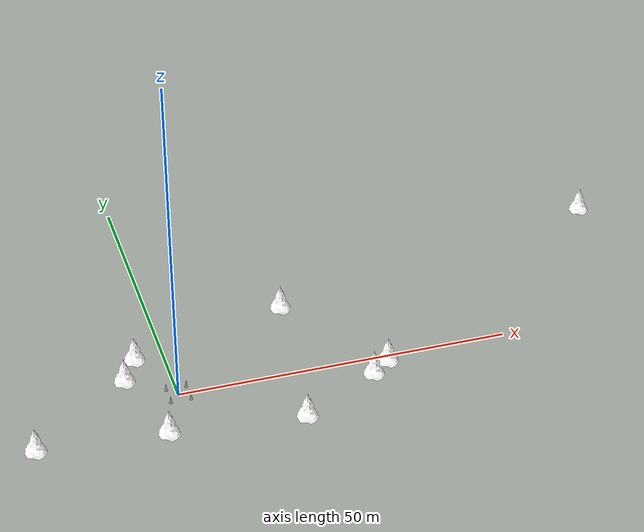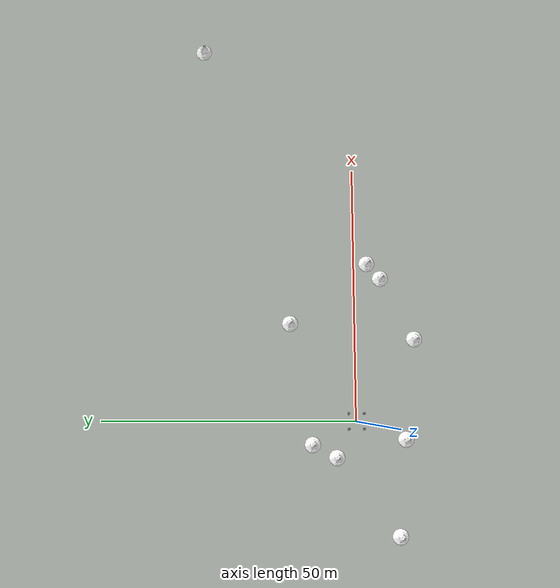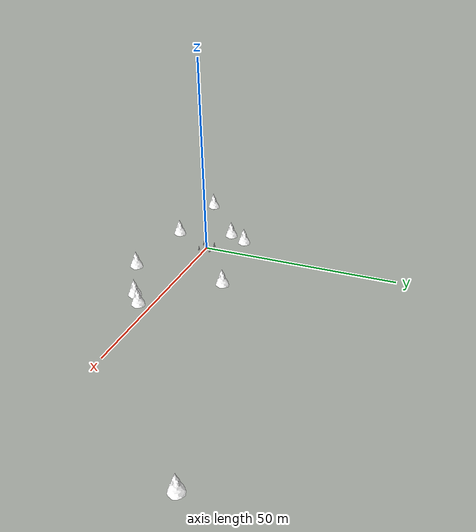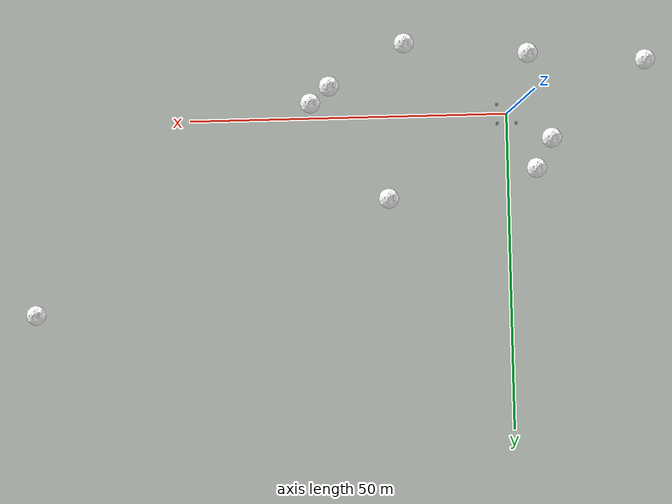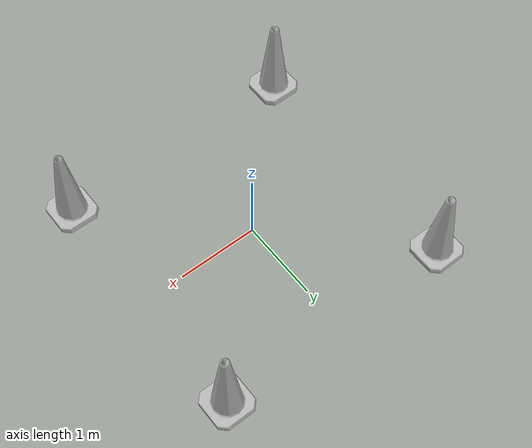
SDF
<sdf version="1.9">
 <world name="outdoor_village">
  <scene><ambient>0.4 0.4 0.4 1</ambient><background>0.7 0.7 0.7 1</background><shadows>1</shadows></scene>
  <physics type="ode">
   <max_step_size>0.004</max_step_size>
   <real_time_factor>1</real_time_factor>
   <real_time_update_rate>250</real_time_update_rate>
  </physics>
  <magnetic_field>6e-06 2.3e-05 -4.2e-05</magnetic_field>
  <gravity>0 0 -9.8066</gravity>
  <light name="sun" type="directional">
   <pose>0 0 10 0 0 0</pose>
   <diffuse>0.8 0.8 0.8 1</diffuse>
   <specular>0.2 0.2 0.2 1</specular>
   <attenuation>
    <range>1000</range>
    <constant>0.9</constant>
    <linear>0.01</linear>
    <quadratic>0.001</quadratic>
   </attenuation>
   <direction>-0.5 0.1 -0.9</direction>
  </light>
  <include>
   <name>construction_cone_1</name>
   <uri>model://construction_cone</uri>
   <pose>1.5 1.5 0   0 0 0</pose>
  </include>
  <include>
   <name>construction_cone_2</name>
   <uri>model://construction_cone</uri>
   <pose>-1.5 1.5 0   0 0 0</pose>
  </include>
  <include>
   <name>construction_cone_3</name>
   <uri>model://construction_cone</uri>
   <pose>1.5 -1.5 0   0 0 0</pose>
  </include>
  <include>
   <name>construction_cone_4</name>
   <uri>model://construction_cone</uri>
   <pose>-1.5 -1.5 0   0 0 0</pose>
  </include>
  <include><name>pine_tree_1</name><uri>model://pine_tree</uri><pose>-4.5 8.7 0   0 0 0</pose></include>
  <include><name>pine_tree_2</name><uri>model://pine_tree</uri><pose>-3.5 -9.5 0   0 0 0</pose></include>
  <include><name>pine_tree_3</name><uri>model://pine_tree</uri><pose>-7 4 0   0 0 0</pose></include>
  <include><name>pine_tree_4</name><uri>model://pine_tree</uri><pose>28 -5 0.17   0 0 0</pose></include>
  <include><name>pine_tree_5</name><uri>model://pine_tree</uri><pose>19 13 1.58   0 0 0</pose></include>
  <include><name>pine_tree_6</name><uri>model://pine_tree</uri><pose>31 -2.4 0   0 0 0</pose></include>
  <include><name>pine_tree_7</name><uri>model://pine_tree</uri><pose>-22 -8 0   0 0 0</pose></include>
  <include><name>pine_tree_8</name><uri>model://pine_tree</uri><pose>75.3 30 -1.44  0 0 0</pose></include>
  <include><name>pine_tree_9</name><uri>model://pine_tree</uri><pose>16 -11.5 0  0 0 0</pose></include>
  <spherical_coordinates>
   <surface_model>EARTH_WGS84</surface_model>
   <world_frame_orientation>ENU</world_frame_orientation>
   <latitude_deg>47.397971057728974</latitude_deg>
   <longitude_deg>8.546163739800146</longitude_deg>
   <elevation>0</elevation>
  </spherical_coordinates>
 </world>
</sdf>

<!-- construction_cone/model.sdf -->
<sdf version="1.5">
  <model name="Construction Cone">
    <link name="link">
      <collision name="collision">
        <geometry>
          <mesh>
            <scale>10 10 10</scale>
            <uri>file://isr-testbed/construction_cone/meshes/construction_cone.dae</uri>
          </mesh>
        </geometry>
      </collision>
      <visual name="visual">
        <geometry>
          <mesh>
            <scale>10 10 10</scale>
            <uri>file://isr-testbed/construction_cone/meshes/construction_cone.dae</uri>
          </mesh>
        </geometry>
      </visual>
    </link>
  </model>
</sdf>

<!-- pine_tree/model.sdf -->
<sdf version="1.6">
  <model name="pine_tree">
    <static>true</static>
    <link name="link">
      <collision name="collision">
        <geometry>
          <mesh>
            <uri>model://pine_tree/meshes/pine_tree.dae</uri>
          </mesh>
        </geometry>
      </collision>
      <visual name="branch">
        <geometry>
          <mesh>
            <uri>model://pine_tree/meshes/pine_tree.dae</uri>
            <submesh>
              <name>Branch</name>
            </submesh>
          </mesh>
        </geometry>
        <material>
          <diffuse>1 1 1 1</diffuse>
          <pbr>
            <metal>
              <albedo_map>model://pine_tree/materials/textures/branch_2_diffuse.png</albedo_map>
            </metal>
          </pbr>
        </material>
      </visual>
      <visual name="bark">
        <geometry>
          <mesh>
            <uri>model://pine_tree/meshes/pine_tree.dae</uri>
            <submesh>
              <name>Bark</name>
            </submesh>
          </mesh>
        </geometry>
        <material>
          <diffuse>1 1 1 1</diffuse>
          <pbr>
            <metal>
              <albedo_map>model://pine_tree/materials/textures/bark_diffuse.png</albedo_map>
            </metal>
          </pbr>
        </material>
      </visual>
    </link>
  </model>
</sdf>
